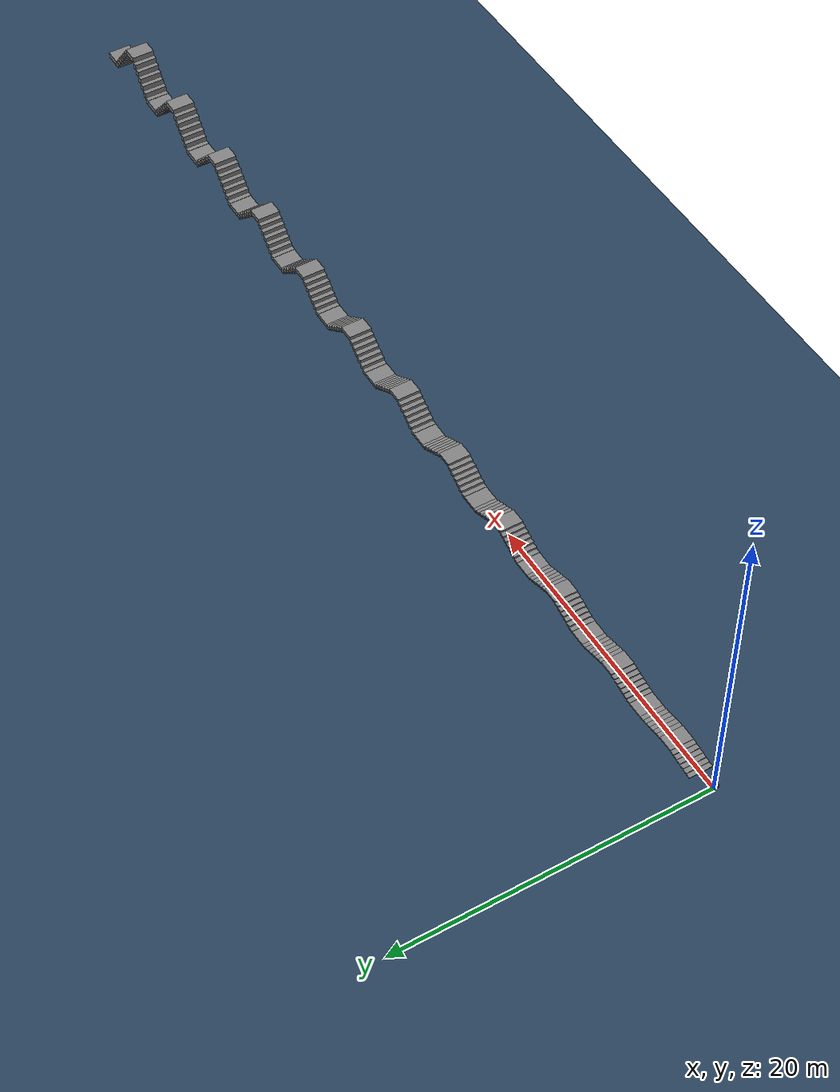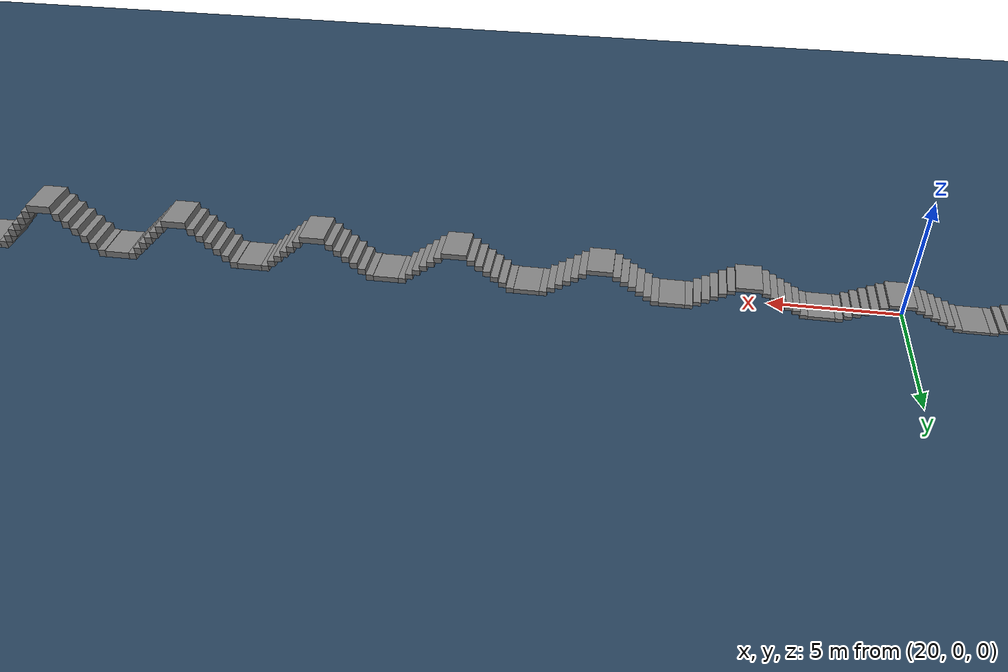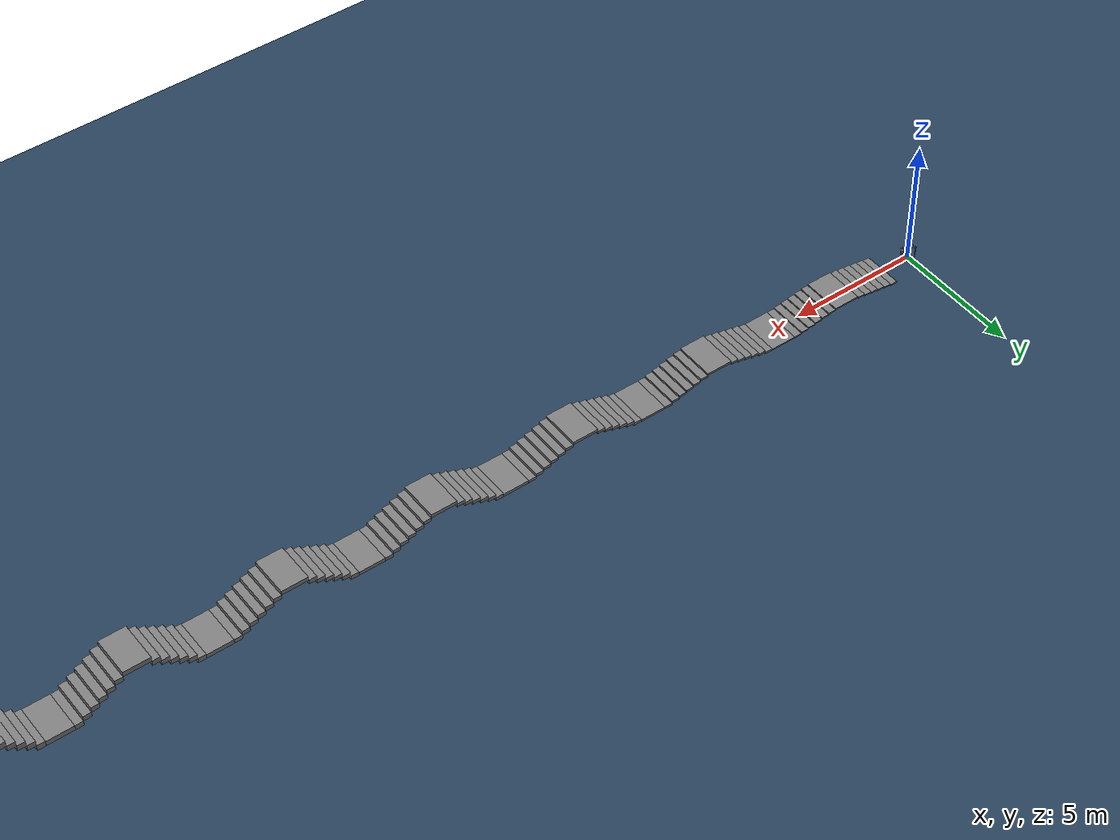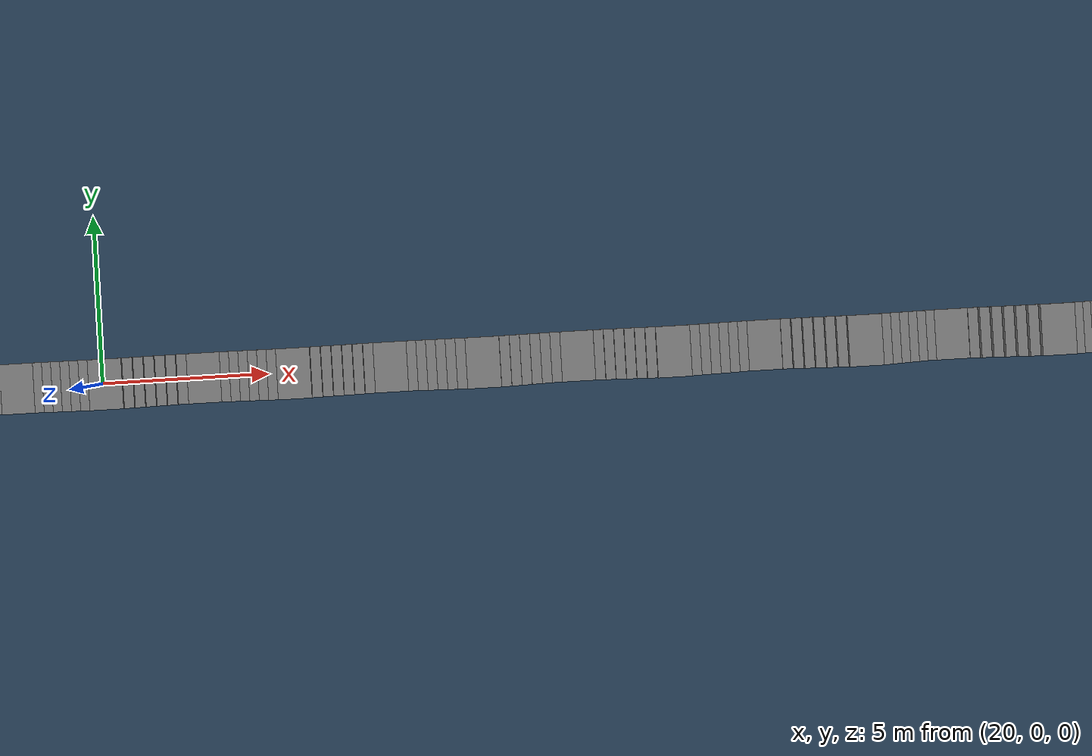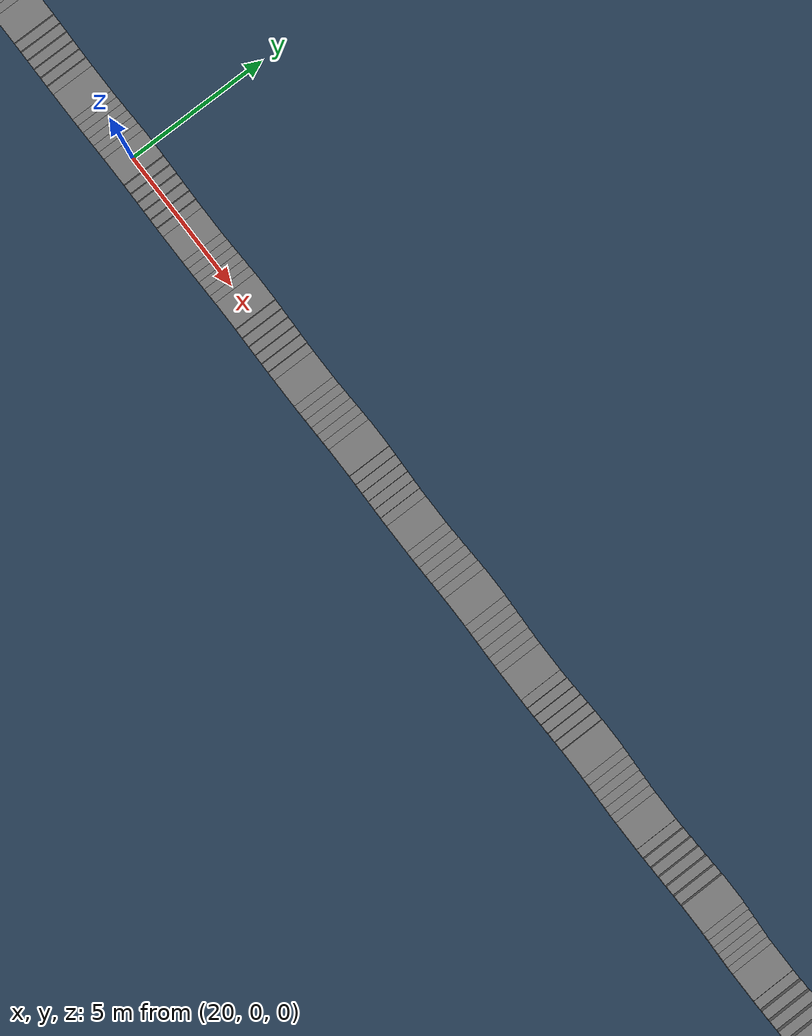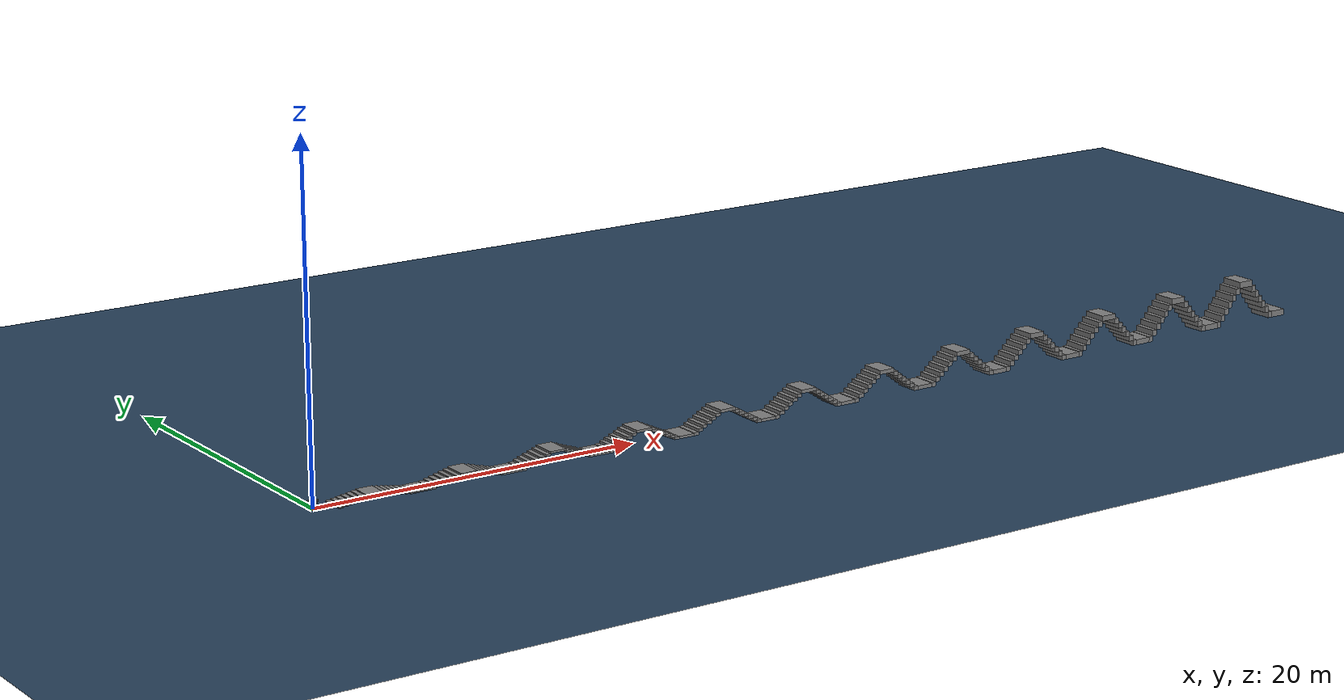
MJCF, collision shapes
<mujoco model="go2 scene">
  <include file="go2.xml" />
  <!--Stairs series: Up 6, Down 6, Start height 0.050, Step inc 0.030, Max height 0.400. -->
  <statistic center="0 0 0.1" extent="0.8" />
  <visual>
    <headlight diffuse="0.6 0.6 0.6" ambient="0.3 0.3 0.3" specular="0 0 0" />
    <rgba haze="0.15 0.25 0.35 1" />
    <global azimuth="-130" elevation="-20" />
  </visual>
  <asset>
    <texture type="skybox" builtin="gradient" rgb1="0.3 0.5 0.7" rgb2="0 0 0" width="512" height="3072" />
    <texture type="2d" name="groundplane" builtin="checker" mark="edge" rgb1="0.2 0.3 0.4" rgb2="0.1 0.2 0.3" markrgb="0.8 0.8 0.8" width="300" height="300" />
    <material name="groundplane" texture="groundplane" texuniform="true" texrepeat="5 5" reflectance="0.0" />
  </asset>
  <worldbody>
    <light pos="0 0 1.5" dir="0 0 -1" directional="true" />
    <geom name="floor" size="0 0 0.05" type="plane" material="groundplane" />
    <geom pos="1.3 0.0 0.025" type="box" size="0.15 0.75 0.025" quat="1.0 0.0 0.0 0.0" />
    <geom pos="1.6 0.0 0.07500000000000001" type="box" size="0.15 0.75 0.025" quat="1.0 0.0 0.0 0.0" />
    <geom pos="1.9 0.0 0.125" type="box" size="0.15 0.75 0.025" quat="1.0 0.0 0.0 0.0" />
    <geom pos="2.2 0.0 0.17500000000000002" type="box" size="0.15 0.75 0.025" quat="1.0 0.0 0.0 0.0" />
    <geom pos="2.5 0.0 0.225" type="box" size="0.15 0.75 0.025" quat="1.0 0.0 0.0 0.0" />
    <geom pos="2.8 0.0 0.275" type="box" size="0.15 0.75 0.025" quat="1.0 0.0 0.0 0.0" />
    <geom pos="3.4499999999999997 0.0 0.32500000000000007" type="box" size="0.5 0.75 0.025" quat="1.0 0.0 0.0 0.0" />
    <site name="5cm" pos="3.45 -0.6 0.352" size="0.0005" group="2" />
    <geom pos="4.1 0.0 0.275" type="box" size="0.15 0.75 0.025" quat="1.0 0.0 0.0 0.0" />
    <geom pos="4.3999999999999995 0.0 0.22500000000000003" type="box" size="0.15 0.75 0.025" quat="1.0 0.0 0.0 0.0" />
    <geom pos="4.699999999999999 0.0 0.17500000000000002" type="box" size="0.15 0.75 0.025" quat="1.0 0.0 0.0 0.0" />
    <geom pos="5.0 0.0 0.125" type="box" size="0.15 0.75 0.025" quat="1.0 0.0 0.0 0.0" />
    <geom pos="5.3 0.0 0.07500000000000001" type="box" size="0.15 0.75 0.025" quat="1.0 0.0 0.0 0.0" />
    <geom pos="5.6 0.0 0.025000000000000022" type="box" size="0.15 0.75 0.025" quat="1.0 0.0 0.0 0.0" />
    <geom pos="6.25 0.0 0.025" type="box" size="0.5 0.75 0.025" quat="1.0 0.0 0.0 0.0" />
    <geom pos="6.898999999999999 0.0 0.04" type="box" size="0.15 0.75 0.04" quat="1.0 0.0 0.0 0.0" />
    <geom pos="7.198999999999999 0.0 0.12" type="box" size="0.15 0.75 0.04" quat="1.0 0.0 0.0 0.0" />
    <geom pos="7.498999999999999 0.0 0.2" type="box" size="0.15 0.75 0.04" quat="1.0 0.0 0.0 0.0" />
    <geom pos="7.7989999999999995 0.0 0.28" type="box" size="0.15 0.75 0.04" quat="1.0 0.0 0.0 0.0" />
    <geom pos="8.099 0.0 0.36" type="box" size="0.15 0.75 0.04" quat="1.0 0.0 0.0 0.0" />
    <geom pos="8.399 0.0 0.44" type="box" size="0.15 0.75 0.04" quat="1.0 0.0 0.0 0.0" />
    <geom pos="9.049 0.0 0.52" type="box" size="0.5 0.75 0.04" quat="1.0 0.0 0.0 0.0" />
    <site name="8cm" pos="9.049 -0.6 0.562" size="0.0005" group="2" />
    <geom pos="9.698999999999998 0.0 0.44" type="box" size="0.15 0.75 0.04" quat="1.0 0.0 0.0 0.0" />
    <geom pos="9.998999999999999 0.0 0.36" type="box" size="0.15 0.75 0.04" quat="1.0 0.0 0.0 0.0" />
    <geom pos="10.299 0.0 0.28" type="box" size="0.15 0.75 0.04" quat="1.0 0.0 0.0 0.0" />
    <geom pos="10.598999999999998 0.0 0.2" type="box" size="0.15 0.75 0.04" quat="1.0 0.0 0.0 0.0" />
    <geom pos="10.899 0.0 0.12" type="box" size="0.15 0.75 0.04" quat="1.0 0.0 0.0 0.0" />
    <geom pos="11.198999999999998 0.0 0.03999999999999998" type="box" size="0.15 0.75 0.04" quat="1.0 0.0 0.0 0.0" />
    <geom pos="11.849 0.0 0.04" type="box" size="0.5 0.75 0.04" quat="1.0 0.0 0.0 0.0" />
    <geom pos="12.498 0.0 0.055" type="box" size="0.15 0.75 0.055" quat="1.0 0.0 0.0 0.0" />
    <geom pos="12.797999999999998 0.0 0.165" type="box" size="0.15 0.75 0.055" quat="1.0 0.0 0.0 0.0" />
    <geom pos="13.097999999999999 0.0 0.275" type="box" size="0.15 0.75 0.055" quat="1.0 0.0 0.0 0.0" />
    <geom pos="13.397999999999998 0.0 0.385" type="box" size="0.15 0.75 0.055" quat="1.0 0.0 0.0 0.0" />
    <geom pos="13.697999999999999 0.0 0.495" type="box" size="0.15 0.75 0.055" quat="1.0 0.0 0.0 0.0" />
    <geom pos="13.997999999999998 0.0 0.605" type="box" size="0.15 0.75 0.055" quat="1.0 0.0 0.0 0.0" />
    <geom pos="14.647999999999998 0.0 0.7150000000000001" type="box" size="0.5 0.75 0.055" quat="1.0 0.0 0.0 0.0" />
    <site name="11cm" pos="14.648 -0.6 0.772" size="0.0005" group="2" />
    <geom pos="15.297999999999998 0.0 0.605" type="box" size="0.15 0.75 0.055" quat="1.0 0.0 0.0 0.0" />
    <geom pos="15.597999999999999 0.0 0.495" type="box" size="0.15 0.75 0.055" quat="1.0 0.0 0.0 0.0" />
    <geom pos="15.897999999999998 0.0 0.385" type="box" size="0.15 0.75 0.055" quat="1.0 0.0 0.0 0.0" />
    <geom pos="16.197999999999997 0.0 0.27499999999999997" type="box" size="0.15 0.75 0.055" quat="1.0 0.0 0.0 0.0" />
    <geom pos="16.497999999999998 0.0 0.16499999999999998" type="box" size="0.15 0.75 0.055" quat="1.0 0.0 0.0 0.0" />
    <geom pos="16.798 0.0 0.05499999999999994" type="box" size="0.15 0.75 0.055" quat="1.0 0.0 0.0 0.0" />
    <geom pos="17.448 0.0 0.055" type="box" size="0.5 0.75 0.055" quat="1.0 0.0 0.0 0.0" />
    <geom pos="18.096999999999998 0.0 0.07" type="box" size="0.15 0.75 0.07" quat="1.0 0.0 0.0 0.0" />
    <geom pos="18.397 0.0 0.21000000000000002" type="box" size="0.15 0.75 0.07" quat="1.0 0.0 0.0 0.0" />
    <geom pos="18.696999999999996 0.0 0.35000000000000003" type="box" size="0.15 0.75 0.07" quat="1.0 0.0 0.0 0.0" />
    <geom pos="18.996999999999996 0.0 0.49000000000000005" type="box" size="0.15 0.75 0.07" quat="1.0 0.0 0.0 0.0" />
    <geom pos="19.296999999999997 0.0 0.6300000000000001" type="box" size="0.15 0.75 0.07" quat="1.0 0.0 0.0 0.0" />
    <geom pos="19.596999999999998 0.0 0.77" type="box" size="0.15 0.75 0.07" quat="1.0 0.0 0.0 0.0" />
    <geom pos="20.246999999999996 0.0 0.9100000000000001" type="box" size="0.5 0.75 0.07" quat="1.0 0.0 0.0 0.0" />
    <site name="14cm" pos="20.247 -0.6 0.982" size="0.0005" group="2" />
    <geom pos="20.897 0.0 0.77" type="box" size="0.15 0.75 0.07" quat="1.0 0.0 0.0 0.0" />
    <geom pos="21.196999999999996 0.0 0.63" type="box" size="0.15 0.75 0.07" quat="1.0 0.0 0.0 0.0" />
    <geom pos="21.496999999999996 0.0 0.49" type="box" size="0.15 0.75 0.07" quat="1.0 0.0 0.0 0.0" />
    <geom pos="21.796999999999997 0.0 0.35" type="box" size="0.15 0.75 0.07" quat="1.0 0.0 0.0 0.0" />
    <geom pos="22.096999999999998 0.0 0.20999999999999996" type="box" size="0.15 0.75 0.07" quat="1.0 0.0 0.0 0.0" />
    <geom pos="22.397 0.0 0.06999999999999995" type="box" size="0.15 0.75 0.07" quat="1.0 0.0 0.0 0.0" />
    <geom pos="23.046999999999997 0.0 0.07" type="box" size="0.5 0.75 0.07" quat="1.0 0.0 0.0 0.0" />
    <geom pos="23.695999999999998 0.0 0.085" type="box" size="0.15 0.75 0.085" quat="1.0 0.0 0.0 0.0" />
    <geom pos="23.996 0.0 0.255" type="box" size="0.15 0.75 0.085" quat="1.0 0.0 0.0 0.0" />
    <geom pos="24.295999999999996 0.0 0.42500000000000004" type="box" size="0.15 0.75 0.085" quat="1.0 0.0 0.0 0.0" />
    <geom pos="24.595999999999997 0.0 0.5950000000000001" type="box" size="0.15 0.75 0.085" quat="1.0 0.0 0.0 0.0" />
    <geom pos="24.895999999999997 0.0 0.765" type="box" size="0.15 0.75 0.085" quat="1.0 0.0 0.0 0.0" />
    <geom pos="25.195999999999998 0.0 0.935" type="box" size="0.15 0.75 0.085" quat="1.0 0.0 0.0 0.0" />
    <geom pos="25.845999999999997 0.0 1.105" type="box" size="0.5 0.75 0.085" quat="1.0 0.0 0.0 0.0" />
    <site name="17cm" pos="25.846 -0.6 1.192" size="0.0005" group="2" />
    <geom pos="26.495999999999995 0.0 0.935" type="box" size="0.15 0.75 0.085" quat="1.0 0.0 0.0 0.0" />
    <geom pos="26.795999999999996 0.0 0.765" type="box" size="0.15 0.75 0.085" quat="1.0 0.0 0.0 0.0" />
    <geom pos="27.095999999999997 0.0 0.595" type="box" size="0.15 0.75 0.085" quat="1.0 0.0 0.0 0.0" />
    <geom pos="27.395999999999997 0.0 0.42500000000000004" type="box" size="0.15 0.75 0.085" quat="1.0 0.0 0.0 0.0" />
    <geom pos="27.695999999999998 0.0 0.255" type="box" size="0.15 0.75 0.085" quat="1.0 0.0 0.0 0.0" />
    <geom pos="27.995999999999995 0.0 0.08499999999999996" type="box" size="0.15 0.75 0.085" quat="1.0 0.0 0.0 0.0" />
    <geom pos="28.645999999999997 0.0 0.085" type="box" size="0.5 0.75 0.085" quat="1.0 0.0 0.0 0.0" />
    <geom pos="29.294999999999998 0.0 0.1" type="box" size="0.15 0.75 0.1" quat="1.0 0.0 0.0 0.0" />
    <geom pos="29.595 0.0 0.30000000000000004" type="box" size="0.15 0.75 0.1" quat="1.0 0.0 0.0 0.0" />
    <geom pos="29.894999999999996 0.0 0.5" type="box" size="0.15 0.75 0.1" quat="1.0 0.0 0.0 0.0" />
    <geom pos="30.194999999999997 0.0 0.7000000000000001" type="box" size="0.15 0.75 0.1" quat="1.0 0.0 0.0 0.0" />
    <geom pos="30.494999999999997 0.0 0.9" type="box" size="0.15 0.75 0.1" quat="1.0 0.0 0.0 0.0" />
    <geom pos="30.794999999999998 0.0 1.1" type="box" size="0.15 0.75 0.1" quat="1.0 0.0 0.0 0.0" />
    <geom pos="31.444999999999997 0.0 1.3000000000000003" type="box" size="0.5 0.75 0.1" quat="1.0 0.0 0.0 0.0" />
    <site name="20cm" pos="31.445 -0.6 1.402" size="0.0005" group="2" />
    <geom pos="32.095 0.0 1.1" type="box" size="0.15 0.75 0.1" quat="1.0 0.0 0.0 0.0" />
    <geom pos="32.394999999999996 0.0 0.9000000000000001" type="box" size="0.15 0.75 0.1" quat="1.0 0.0 0.0 0.0" />
    <geom pos="32.695 0.0 0.7000000000000001" type="box" size="0.15 0.75 0.1" quat="1.0 0.0 0.0 0.0" />
    <geom pos="32.995 0.0 0.5" type="box" size="0.15 0.75 0.1" quat="1.0 0.0 0.0 0.0" />
    <geom pos="33.294999999999995 0.0 0.30000000000000004" type="box" size="0.15 0.75 0.1" quat="1.0 0.0 0.0 0.0" />
    <geom pos="33.595 0.0 0.10000000000000009" type="box" size="0.15 0.75 0.1" quat="1.0 0.0 0.0 0.0" />
    <geom pos="34.245 0.0 0.1" type="box" size="0.5 0.75 0.1" quat="1.0 0.0 0.0 0.0" />
    <geom pos="34.89399999999999 0.0 0.115" type="box" size="0.15 0.75 0.115" quat="1.0 0.0 0.0 0.0" />
    <geom pos="35.193999999999996 0.0 0.34500000000000003" type="box" size="0.15 0.75 0.115" quat="1.0 0.0 0.0 0.0" />
    <geom pos="35.49399999999999 0.0 0.5750000000000001" type="box" size="0.15 0.75 0.115" quat="1.0 0.0 0.0 0.0" />
    <geom pos="35.794 0.0 0.805" type="box" size="0.15 0.75 0.115" quat="1.0 0.0 0.0 0.0" />
    <geom pos="36.093999999999994 0.0 1.0350000000000001" type="box" size="0.15 0.75 0.115" quat="1.0 0.0 0.0 0.0" />
    <geom pos="36.39399999999999 0.0 1.2650000000000001" type="box" size="0.15 0.75 0.115" quat="1.0 0.0 0.0 0.0" />
    <geom pos="37.044 0.0 1.495" type="box" size="0.5 0.75 0.115" quat="1.0 0.0 0.0 0.0" />
    <site name="23cm" pos="37.044 -0.6 1.612" size="0.0005" group="2" />
    <geom pos="37.693999999999996 0.0 1.2650000000000001" type="box" size="0.15 0.75 0.115" quat="1.0 0.0 0.0 0.0" />
    <geom pos="37.99399999999999 0.0 1.0350000000000001" type="box" size="0.15 0.75 0.115" quat="1.0 0.0 0.0 0.0" />
    <geom pos="38.294 0.0 0.8050000000000002" type="box" size="0.15 0.75 0.115" quat="1.0 0.0 0.0 0.0" />
    <geom pos="38.593999999999994 0.0 0.5750000000000001" type="box" size="0.15 0.75 0.115" quat="1.0 0.0 0.0 0.0" />
    <geom pos="38.89399999999999 0.0 0.3450000000000001" type="box" size="0.15 0.75 0.115" quat="1.0 0.0 0.0 0.0" />
    <geom pos="39.193999999999996 0.0 0.11499999999999999" type="box" size="0.15 0.75 0.115" quat="1.0 0.0 0.0 0.0" />
    <geom pos="39.843999999999994 0.0 0.115" type="box" size="0.5 0.75 0.115" quat="1.0 0.0 0.0 0.0" />
    <geom pos="40.49299999999999 0.0 0.13" type="box" size="0.15 0.75 0.13" quat="1.0 0.0 0.0 0.0" />
    <geom pos="40.79299999999999 0.0 0.39" type="box" size="0.15 0.75 0.13" quat="1.0 0.0 0.0 0.0" />
    <geom pos="41.09299999999999 0.0 0.65" type="box" size="0.15 0.75 0.13" quat="1.0 0.0 0.0 0.0" />
    <geom pos="41.392999999999994 0.0 0.91" type="box" size="0.15 0.75 0.13" quat="1.0 0.0 0.0 0.0" />
    <geom pos="41.69299999999999 0.0 1.17" type="box" size="0.15 0.75 0.13" quat="1.0 0.0 0.0 0.0" />
    <geom pos="41.99299999999999 0.0 1.4300000000000002" type="box" size="0.15 0.75 0.13" quat="1.0 0.0 0.0 0.0" />
    <geom pos="42.642999999999994 0.0 1.69" type="box" size="0.5 0.75 0.13" quat="1.0 0.0 0.0 0.0" />
    <site name="26cm" pos="42.643 -0.6 1.822" size="0.0005" group="2" />
    <geom pos="43.29299999999999 0.0 1.4300000000000002" type="box" size="0.15 0.75 0.13" quat="1.0 0.0 0.0 0.0" />
    <geom pos="43.59299999999999 0.0 1.1700000000000002" type="box" size="0.15 0.75 0.13" quat="1.0 0.0 0.0 0.0" />
    <geom pos="43.892999999999994 0.0 0.9100000000000001" type="box" size="0.15 0.75 0.13" quat="1.0 0.0 0.0 0.0" />
    <geom pos="44.19299999999999 0.0 0.6500000000000001" type="box" size="0.15 0.75 0.13" quat="1.0 0.0 0.0 0.0" />
    <geom pos="44.49299999999999 0.0 0.3900000000000001" type="box" size="0.15 0.75 0.13" quat="1.0 0.0 0.0 0.0" />
    <geom pos="44.79299999999999 0.0 0.13000000000000012" type="box" size="0.15 0.75 0.13" quat="1.0 0.0 0.0 0.0" />
    <geom pos="45.44299999999999 0.0 0.13" type="box" size="0.5 0.75 0.13" quat="1.0 0.0 0.0 0.0" />
    <geom pos="46.091999999999985 0.0 0.145" type="box" size="0.15 0.75 0.145" quat="1.0 0.0 0.0 0.0" />
    <geom pos="46.39199999999999 0.0 0.43499999999999994" type="box" size="0.15 0.75 0.145" quat="1.0 0.0 0.0 0.0" />
    <geom pos="46.691999999999986 0.0 0.725" type="box" size="0.15 0.75 0.145" quat="1.0 0.0 0.0 0.0" />
    <geom pos="46.99199999999999 0.0 1.015" type="box" size="0.15 0.75 0.145" quat="1.0 0.0 0.0 0.0" />
    <geom pos="47.29199999999999 0.0 1.305" type="box" size="0.15 0.75 0.145" quat="1.0 0.0 0.0 0.0" />
    <geom pos="47.591999999999985 0.0 1.595" type="box" size="0.15 0.75 0.145" quat="1.0 0.0 0.0 0.0" />
    <geom pos="48.24199999999999 0.0 1.8849999999999998" type="box" size="0.5 0.75 0.145" quat="1.0 0.0 0.0 0.0" />
    <site name="29cm" pos="48.242 -0.6 2.032" size="0.0005" group="2" />
    <geom pos="48.89199999999999 0.0 1.5949999999999998" type="box" size="0.15 0.75 0.145" quat="1.0 0.0 0.0 0.0" />
    <geom pos="49.191999999999986 0.0 1.3049999999999997" type="box" size="0.15 0.75 0.145" quat="1.0 0.0 0.0 0.0" />
    <geom pos="49.49199999999999 0.0 1.0149999999999997" type="box" size="0.15 0.75 0.145" quat="1.0 0.0 0.0 0.0" />
    <geom pos="49.79199999999999 0.0 0.7249999999999999" type="box" size="0.15 0.75 0.145" quat="1.0 0.0 0.0 0.0" />
    <geom pos="50.091999999999985 0.0 0.43499999999999983" type="box" size="0.15 0.75 0.145" quat="1.0 0.0 0.0 0.0" />
    <geom pos="50.39199999999999 0.0 0.1449999999999998" type="box" size="0.15 0.75 0.145" quat="1.0 0.0 0.0 0.0" />
    <geom pos="51.04199999999999 0.0 0.145" type="box" size="0.5 0.75 0.145" quat="1.0 0.0 0.0 0.0" />
    <geom pos="51.69099999999998 0.0 0.16" type="box" size="0.15 0.75 0.16" quat="1.0 0.0 0.0 0.0" />
    <geom pos="51.990999999999985 0.0 0.48" type="box" size="0.15 0.75 0.16" quat="1.0 0.0 0.0 0.0" />
    <geom pos="52.29099999999998 0.0 0.8" type="box" size="0.15 0.75 0.16" quat="1.0 0.0 0.0 0.0" />
    <geom pos="52.59099999999999 0.0 1.12" type="box" size="0.15 0.75 0.16" quat="1.0 0.0 0.0 0.0" />
    <geom pos="52.890999999999984 0.0 1.44" type="box" size="0.15 0.75 0.16" quat="1.0 0.0 0.0 0.0" />
    <geom pos="53.19099999999998 0.0 1.76" type="box" size="0.15 0.75 0.16" quat="1.0 0.0 0.0 0.0" />
    <geom pos="53.84099999999999 0.0 2.08" type="box" size="0.5 0.75 0.16" quat="1.0 0.0 0.0 0.0" />
    <site name="32cm" pos="53.841 -0.6 2.242" size="0.0005" group="2" />
    <geom pos="54.490999999999985 0.0 1.76" type="box" size="0.15 0.75 0.16" quat="1.0 0.0 0.0 0.0" />
    <geom pos="54.79099999999998 0.0 1.44" type="box" size="0.15 0.75 0.16" quat="1.0 0.0 0.0 0.0" />
    <geom pos="55.09099999999999 0.0 1.12" type="box" size="0.15 0.75 0.16" quat="1.0 0.0 0.0 0.0" />
    <geom pos="55.390999999999984 0.0 0.8" type="box" size="0.15 0.75 0.16" quat="1.0 0.0 0.0 0.0" />
    <geom pos="55.69099999999998 0.0 0.48" type="box" size="0.15 0.75 0.16" quat="1.0 0.0 0.0 0.0" />
    <geom pos="55.990999999999985 0.0 0.15999999999999992" type="box" size="0.15 0.75 0.16" quat="1.0 0.0 0.0 0.0" />
    <geom pos="56.640999999999984 0.0 0.16" type="box" size="0.5 0.75 0.16" quat="1.0 0.0 0.0 0.0" />
    <geom pos="57.28999999999998 0.0 0.175" type="box" size="0.15 0.75 0.175" quat="1.0 0.0 0.0 0.0" />
    <geom pos="57.58999999999998 0.0 0.5249999999999999" type="box" size="0.15 0.75 0.175" quat="1.0 0.0 0.0 0.0" />
    <geom pos="57.88999999999998 0.0 0.875" type="box" size="0.15 0.75 0.175" quat="1.0 0.0 0.0 0.0" />
    <geom pos="58.18999999999998 0.0 1.2249999999999999" type="box" size="0.15 0.75 0.175" quat="1.0 0.0 0.0 0.0" />
    <geom pos="58.48999999999998 0.0 1.575" type="box" size="0.15 0.75 0.175" quat="1.0 0.0 0.0 0.0" />
    <geom pos="58.78999999999998 0.0 1.9249999999999998" type="box" size="0.15 0.75 0.175" quat="1.0 0.0 0.0 0.0" />
    <geom pos="59.43999999999998 0.0 2.2749999999999995" type="box" size="0.5 0.75 0.175" quat="1.0 0.0 0.0 0.0" />
    <site name="35cm" pos="59.44 -0.6 2.452" size="0.0005" group="2" />
    <geom pos="60.08999999999998 0.0 1.9249999999999996" type="box" size="0.15 0.75 0.175" quat="1.0 0.0 0.0 0.0" />
    <geom pos="60.38999999999998 0.0 1.5749999999999997" type="box" size="0.15 0.75 0.175" quat="1.0 0.0 0.0 0.0" />
    <geom pos="60.68999999999998 0.0 1.2249999999999996" type="box" size="0.15 0.75 0.175" quat="1.0 0.0 0.0 0.0" />
    <geom pos="60.98999999999998 0.0 0.8749999999999998" type="box" size="0.15 0.75 0.175" quat="1.0 0.0 0.0 0.0" />
    <geom pos="61.28999999999998 0.0 0.5249999999999997" type="box" size="0.15 0.75 0.175" quat="1.0 0.0 0.0 0.0" />
    <geom pos="61.58999999999998 0.0 0.1749999999999996" type="box" size="0.15 0.75 0.175" quat="1.0 0.0 0.0 0.0" />
    <geom pos="62.23999999999998 0.0 0.175" type="box" size="0.5 0.75 0.175" quat="1.0 0.0 0.0 0.0" />
    <geom pos="62.888999999999974 0.0 0.19" type="box" size="0.15 0.75 0.19" quat="1.0 0.0 0.0 0.0" />
    <geom pos="63.18899999999998 0.0 0.5700000000000001" type="box" size="0.15 0.75 0.19" quat="1.0 0.0 0.0 0.0" />
    <geom pos="63.488999999999976 0.0 0.95" type="box" size="0.15 0.75 0.19" quat="1.0 0.0 0.0 0.0" />
    <geom pos="63.78899999999998 0.0 1.33" type="box" size="0.15 0.75 0.19" quat="1.0 0.0 0.0 0.0" />
    <geom pos="64.08899999999997 0.0 1.71" type="box" size="0.15 0.75 0.19" quat="1.0 0.0 0.0 0.0" />
    <geom pos="64.38899999999998 0.0 2.09" type="box" size="0.15 0.75 0.19" quat="1.0 0.0 0.0 0.0" />
    <geom pos="65.03899999999997 0.0 2.47" type="box" size="0.5 0.75 0.19" quat="1.0 0.0 0.0 0.0" />
    <site name="38cm" pos="65.039 -0.6 2.662" size="0.0005" group="2" />
    <geom pos="65.68899999999998 0.0 2.0900000000000003" type="box" size="0.15 0.75 0.19" quat="1.0 0.0 0.0 0.0" />
    <geom pos="65.98899999999998 0.0 1.7100000000000004" type="box" size="0.15 0.75 0.19" quat="1.0 0.0 0.0 0.0" />
    <geom pos="66.28899999999997 0.0 1.3300000000000003" type="box" size="0.15 0.75 0.19" quat="1.0 0.0 0.0 0.0" />
    <geom pos="66.58899999999997 0.0 0.9500000000000002" type="box" size="0.15 0.75 0.19" quat="1.0 0.0 0.0 0.0" />
    <geom pos="66.88899999999998 0.0 0.5700000000000003" type="box" size="0.15 0.75 0.19" quat="1.0 0.0 0.0 0.0" />
    <geom pos="67.18899999999998 0.0 0.1900000000000004" type="box" size="0.15 0.75 0.19" quat="1.0 0.0 0.0 0.0" />
    <geom pos="67.83899999999997 0.0 0.19" type="box" size="0.5 0.75 0.19" quat="1.0 0.0 0.0 0.0" />
  </worldbody>
</mujoco>

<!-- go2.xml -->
<mujoco model="go2">
  <compiler angle="radian" meshdir="assets" autolimits="true" />

  <option cone="elliptic" impratio="100" />

  <default>
    <default class="go2">
      <geom friction="0.4" margin="0.001" condim="1"/>
      <joint axis="0 1 0" damping="0.1" armature="0.01" frictionloss="0.2"/>
      <motor ctrlrange="-23.7 23.7"/>
      <default class="abduction">
        <joint axis="1 0 0" range="-1.0472 1.0472"/>
      </default>
      <default class="hip">
        <default class="front_hip">
          <joint range="-1.5708 3.4907"/>
        </default>
        <default class="back_hip">
          <joint range="-0.5236 4.5379"/>
        </default>
      </default>
      <default class="knee">
        <joint range="-2.7227 -0.83776"/>
        <motor ctrlrange="-45.43 45.43"/>
      </default>
      <default class="visual">
        <geom type="mesh" contype="0" conaffinity="0" group="2"/>
      </default>
      <default class="collision">
        <geom group="3"/>
        <default class="foot">
          <!-- since priority = 1, foot geom friction will be used for ground contact -->
          <geom size="0.022" pos="-0.002 0 -0.213" priority="1" condim="6"
            friction="0.8 0.02 0.01"/>
        </default>
      </default>
    </default>
  </default>

  <asset>
    <material name="metal" rgba=".9 .95 .95 1" />
    <material name="black" rgba="0 0 0 1" />
    <material name="white" rgba="1 1 1 1" />
    <material name="gray" rgba="0.671705 0.692426 0.774270 1" />

    <mesh file="base_0.obj" />
    <mesh file="base_1.obj" />
    <mesh file="base_2.obj" />
    <mesh file="base_3.obj" />
    <mesh file="base_4.obj" />
    <mesh file="hip_0.obj" />
    <mesh file="hip_1.obj" />
    <mesh file="thigh_0.obj" />
    <mesh file="thigh_1.obj" />
    <mesh file="thigh_mirror_0.obj" />
    <mesh file="thigh_mirror_1.obj" />
    <mesh file="calf_0.obj" />
    <mesh file="calf_1.obj" />
    <mesh file="calf_mirror_0.obj" />
    <mesh file="calf_mirror_1.obj" />
    <mesh file="foot.obj" />
  </asset>

  <worldbody>
    <body name="base_link" pos="0 0 0.445" childclass="go2">
      <inertial pos="0.021112 0 -0.005366" quat="-0.000543471 0.713435 -0.00173769 0.700719"
        mass="6.921"
        diaginertia="0.107027 0.0980771 0.0244531" />
      <freejoint />
      <geom mesh="base_0" material="black" class="visual" />
      <geom mesh="base_1" material="black" class="visual" />
      <geom mesh="base_2" material="black" class="visual" />
      <geom mesh="base_3" material="white" class="visual" />
      <geom mesh="base_4" material="gray" class="visual" />
      <geom size="0.1881 0.04675 0.057" type="box" class="collision" />
      <geom size="0.05 0.045" pos="0.285 0 0.01" type="cylinder" class="collision" />
      <geom size="0.047" pos="0.293 0 -0.06" class="collision" />
      <site name="imu" pos="-0.02557 0 0.04232" />
      <body name="FL_hip" pos="0.1934 0.0465 0">
        <inertial pos="-0.0054 0.00194 -0.000105" quat="0.497014 0.499245 0.505462 0.498237"
          mass="0.678"
          diaginertia="0.00088403 0.000596003 0.000479967" />
        <joint name="FL_hip_joint" class="abduction" />
        <geom mesh="hip_0" material="metal" class="visual" />
        <geom mesh="hip_1" material="gray" class="visual" />
        <geom size="0.046 0.02" pos="0 0.08 0" quat="1 1 0 0" type="cylinder" class="collision" />
        <body name="FL_thigh" pos="0 0.0955 0">
          <inertial pos="-0.00374 -0.0223 -0.0327" quat="0.829533 0.0847635 -0.0200632 0.551623"
            mass="1.152"
            diaginertia="0.00594973 0.00584149 0.000878787" />
          <joint name="FL_thigh_joint" class="front_hip" />
          <geom mesh="thigh_0" material="metal" class="visual" />
          <geom mesh="thigh_1" material="gray" class="visual" />
          <geom size="0.1065 0.01225 0.017" pos="0 0 -0.1065" quat="0.707107 0 0.707107 0"
            type="box" class="collision" />
          <body name="FL_calf" pos="0 0 -0.213">
            <inertial pos="0.00629595 -0.000622121 -0.141417"
              quat="0.710672 0.00154099 -0.00450087 0.703508"
              mass="0.241352" diaginertia="0.0014901 0.00146356 5.31397e-05" />
            <joint name="FL_calf_joint" class="knee" />
            <geom mesh="calf_0" material="gray" class="visual" />
            <geom mesh="calf_1" material="black" class="visual" />
            <geom size="0.012 0.06" pos="0.008 0 -0.06" quat="0.994493 0 -0.104807 0"
              type="cylinder" class="collision" />
            <geom size="0.011 0.0325" pos="0.02 0 -0.148" quat="0.999688 0 0.0249974 0"
              type="cylinder" class="collision" />
            <geom pos="0 0 -0.213" mesh="foot" class="visual" material="black" />
            <geom name="FL" class="foot" />
            <body name="FL_foot" pos="0 0 -0.213" />
          </body>
        </body>
      </body>
      <body name="FR_hip" pos="0.1934 -0.0465 0">
        <inertial pos="-0.0054 -0.00194 -0.000105" quat="0.498237 0.505462 0.499245 0.497014"
          mass="0.678"
          diaginertia="0.00088403 0.000596003 0.000479967" />
        <joint name="FR_hip_joint" class="abduction" />
        <geom mesh="hip_0" material="metal" class="visual" quat="4.63268e-05 1 0 0" />
        <geom mesh="hip_1" material="gray" class="visual" quat="4.63268e-05 1 0 0" />
        <geom size="0.046 0.02" pos="0 -0.08 0" quat="0.707107 0.707107 0 0" type="cylinder"
          class="collision" />
        <body name="FR_thigh" pos="0 -0.0955 0">
          <inertial pos="-0.00374 0.0223 -0.0327" quat="0.551623 -0.0200632 0.0847635 0.829533"
            mass="1.152"
            diaginertia="0.00594973 0.00584149 0.000878787" />
          <joint name="FR_thigh_joint" class="front_hip" />
          <geom mesh="thigh_mirror_0" material="metal" class="visual" />
          <geom mesh="thigh_mirror_1" material="gray" class="visual" />
          <geom size="0.1065 0.01225 0.017" pos="0 0 -0.1065" quat="0.707107 0 0.707107 0"
            type="box" class="collision" />
          <body name="FR_calf" pos="0 0 -0.213">
            <inertial pos="0.00629595 0.000622121 -0.141417"
              quat="0.703508 -0.00450087 0.00154099 0.710672"
              mass="0.241352" diaginertia="0.0014901 0.00146356 5.31397e-05" />
            <joint name="FR_calf_joint" class="knee" />
            <geom mesh="calf_mirror_0" material="gray" class="visual" />
            <geom mesh="calf_mirror_1" material="black" class="visual" />
            <geom size="0.013 0.06" pos="0.01 0 -0.06" quat="0.995004 0 -0.0998334 0"
              type="cylinder" class="collision" />
            <geom size="0.011 0.0325" pos="0.02 0 -0.148" quat="0.999688 0 0.0249974 0"
              type="cylinder" class="collision" />
            <geom pos="0 0 -0.213" mesh="foot" class="visual" material="black" />
            <geom name="FR" class="foot" />
            <body name="FR_foot" pos="0 0 -0.213" />
          </body>
        </body>
      </body>
      <body name="RL_hip" pos="-0.1934 0.0465 0">
        <inertial pos="0.0054 0.00194 -0.000105" quat="0.505462 0.498237 0.497014 0.499245"
          mass="0.678"
          diaginertia="0.00088403 0.000596003 0.000479967" />
        <joint name="RL_hip_joint" class="abduction" />
        <geom mesh="hip_0" material="metal" class="visual" quat="4.63268e-05 0 1 0" />
        <geom mesh="hip_1" material="gray" class="visual" quat="4.63268e-05 0 1 0" />
        <geom size="0.046 0.02" pos="0 0.08 0" quat="0.707107 0.707107 0 0" type="cylinder"
          class="collision" />
        <body name="RL_thigh" pos="0 0.0955 0">
          <inertial pos="-0.00374 -0.0223 -0.0327" quat="0.829533 0.0847635 -0.0200632 0.551623"
            mass="1.152"
            diaginertia="0.00594973 0.00584149 0.000878787" />
          <joint name="RL_thigh_joint" class="back_hip" />
          <geom mesh="thigh_0" material="metal" class="visual" />
          <geom mesh="thigh_1" material="gray" class="visual" />
          <geom size="0.1065 0.01225 0.017" pos="0 0 -0.1065" quat="0.707107 0 0.707107 0"
            type="box" class="collision" />
          <body name="RL_calf" pos="0 0 -0.213">
            <inertial pos="0.00629595 -0.000622121 -0.141417"
              quat="0.710672 0.00154099 -0.00450087 0.703508"
              mass="0.241352" diaginertia="0.0014901 0.00146356 5.31397e-05" />
            <joint name="RL_calf_joint" class="knee" />
            <geom mesh="calf_0" material="gray" class="visual" />
            <geom mesh="calf_1" material="black" class="visual" />
            <geom size="0.013 0.06" pos="0.01 0 -0.06" quat="0.995004 0 -0.0998334 0"
              type="cylinder" class="collision" />
            <geom size="0.011 0.0325" pos="0.02 0 -0.148" quat="0.999688 0 0.0249974 0"
              type="cylinder" class="collision" />
            <geom pos="0 0 -0.213" mesh="foot" class="visual" material="black" />
            <geom name="RL" class="foot" />
            <body name="RL_foot" pos="0 0 -0.213" />
          </body>
        </body>
      </body>
      <body name="RR_hip" pos="-0.1934 -0.0465 0">
        <inertial pos="0.0054 -0.00194 -0.000105" quat="0.499245 0.497014 0.498237 0.505462"
          mass="0.678"
          diaginertia="0.00088403 0.000596003 0.000479967" />
        <joint name="RR_hip_joint" class="abduction" />
        <geom mesh="hip_0" material="metal" class="visual"
          quat="2.14617e-09 4.63268e-05 4.63268e-05 -1" />
        <geom mesh="hip_1" material="gray" class="visual"
          quat="2.14617e-09 4.63268e-05 4.63268e-05 -1" />
        <geom size="0.046 0.02" pos="0 -0.08 0" quat="0.707107 0.707107 0 0" type="cylinder"
          class="collision" />
        <body name="RR_thigh" pos="0 -0.0955 0">
          <inertial pos="-0.00374 0.0223 -0.0327" quat="0.551623 -0.0200632 0.0847635 0.829533"
            mass="1.152"
            diaginertia="0.00594973 0.00584149 0.000878787" />
          <joint name="RR_thigh_joint" class="back_hip" />
          <geom mesh="thigh_mirror_0" material="metal" class="visual" />
          <geom mesh="thigh_mirror_1" material="gray" class="visual" />
          <geom size="0.1065 0.01225 0.017" pos="0 0 -0.1065" quat="0.707107 0 0.707107 0"
            type="box" class="collision" />
          <body name="RR_calf" pos="0 0 -0.213">
            <inertial pos="0.00629595 0.000622121 -0.141417"
              quat="0.703508 -0.00450087 0.00154099 0.710672"
              mass="0.241352" diaginertia="0.0014901 0.00146356 5.31397e-05" />
            <joint name="RR_calf_joint" class="knee" />
            <geom mesh="calf_mirror_0" material="gray" class="visual" />
            <geom mesh="calf_mirror_1" material="black" class="visual" />
            <geom size="0.013 0.06" pos="0.01 0 -0.06" quat="0.995004 0 -0.0998334 0"
              type="cylinder" class="collision" />
            <geom size="0.011 0.0325" pos="0.02 0 -0.148" quat="0.999688 0 0.0249974 0"
              type="cylinder" class="collision" />
            <geom pos="0 0 -0.213" mesh="foot" class="visual" material="black" />
            <geom name="RR" class="foot" />
            <body name="RR_foot" pos="0 0 -0.213" />
          </body>
        </body>
      </body>
    </body>
  </worldbody>

  <actuator>
    <motor class="abduction" name="FR_hip" joint="FR_hip_joint" />
    <motor class="hip" name="FR_thigh" joint="FR_thigh_joint" />
    <motor class="knee" name="FR_calf" joint="FR_calf_joint" />
    <motor class="abduction" name="FL_hip" joint="FL_hip_joint" />
    <motor class="hip" name="FL_thigh" joint="FL_thigh_joint" />
    <motor class="knee" name="FL_calf" joint="FL_calf_joint" />
    <motor class="abduction" name="RR_hip" joint="RR_hip_joint" />
    <motor class="hip" name="RR_thigh" joint="RR_thigh_joint" />
    <motor class="knee" name="RR_calf" joint="RR_calf_joint" />
    <motor class="abduction" name="RL_hip" joint="RL_hip_joint" />
    <motor class="hip" name="RL_thigh" joint="RL_thigh_joint" />
    <motor class="knee" name="RL_calf" joint="RL_calf_joint" />
  </actuator>

  <sensor>
    <jointpos name="FR_hip_pos" joint="FR_hip_joint" />
    <jointpos name="FR_thigh_pos" joint="FR_thigh_joint" />
    <jointpos name="FR_calf_pos" joint="FR_calf_joint" />
    <jointpos name="FL_hip_pos" joint="FL_hip_joint" />
    <jointpos name="FL_thigh_pos" joint="FL_thigh_joint" />
    <jointpos name="FL_calf_pos" joint="FL_calf_joint" />
    <jointpos name="RR_hip_pos" joint="RR_hip_joint" />
    <jointpos name="RR_thigh_pos" joint="RR_thigh_joint" />
    <jointpos name="RR_calf_pos" joint="RR_calf_joint" />
    <jointpos name="RL_hip_pos" joint="RL_hip_joint" />
    <jointpos name="RL_thigh_pos" joint="RL_thigh_joint" />
    <jointpos name="RL_calf_pos" joint="RL_calf_joint" />

    <jointvel name="FR_hip_vel" joint="FR_hip_joint" />
    <jointvel name="FR_thigh_vel" joint="FR_thigh_joint" />
    <jointvel name="FR_calf_vel" joint="FR_calf_joint" />
    <jointvel name="FL_hip_vel" joint="FL_hip_joint" />
    <jointvel name="FL_thigh_vel" joint="FL_thigh_joint" />
    <jointvel name="FL_calf_vel" joint="FL_calf_joint" />
    <jointvel name="RR_hip_vel" joint="RR_hip_joint" />
    <jointvel name="RR_thigh_vel" joint="RR_thigh_joint" />
    <jointvel name="RR_calf_vel" joint="RR_calf_joint" />
    <jointvel name="RL_hip_vel" joint="RL_hip_joint" />
    <jointvel name="RL_thigh_vel" joint="RL_thigh_joint" />
    <jointvel name="RL_calf_vel" joint="RL_calf_joint" />

    <jointactuatorfrc name="FR_hip_torque" joint="FR_hip_joint" noise="0.01" />
    <jointactuatorfrc name="FR_thigh_torque" joint="FR_thigh_joint" noise="0.01" />
    <jointactuatorfrc name="FR_calf_torque" joint="FR_calf_joint" noise="0.01" />
    <jointactuatorfrc name="FL_hip_torque" joint="FL_hip_joint" noise="0.01" />
    <jointactuatorfrc name="FL_thigh_torque" joint="FL_thigh_joint" noise="0.01" />
    <jointactuatorfrc name="FL_calf_torque" joint="FL_calf_joint" noise="0.01" />
    <jointactuatorfrc name="RR_hip_torque" joint="RR_hip_joint" noise="0.01" />
    <jointactuatorfrc name="RR_thigh_torque" joint="RR_thigh_joint" noise="0.01" />
    <jointactuatorfrc name="RR_calf_torque" joint="RR_calf_joint" noise="0.01" />
    <jointactuatorfrc name="RL_hip_torque" joint="RL_hip_joint" noise="0.01" />
    <jointactuatorfrc name="RL_thigh_torque" joint="RL_thigh_joint" noise="0.01" />
    <jointactuatorfrc name="RL_calf_torque" joint="RL_calf_joint" noise="0.01" />

    <framequat name="imu_quat" objtype="site" objname="imu" />
    <gyro name="imu_gyro" site="imu" />
    <accelerometer name="imu_acc" site="imu" />

    <framepos name="frame_pos" objtype="site" objname="imu" />
    <framelinvel name="frame_vel" objtype="site" objname="imu" />
  </sensor>

  <keyframe>
    <key name="home" qpos="0 0 0.27 1 0 0 0 0 0.9 -1.8 0 0.9 -1.8 0 0.9 -1.8 0 0.9 -1.8"
      ctrl="0 0.9 -1.8 0 0.9 -1.8 0 0.9 -1.8 0 0.9 -1.8" />
  </keyframe>
</mujoco>
